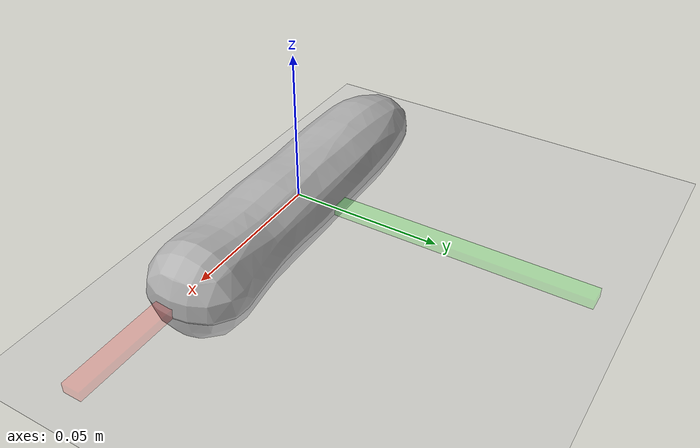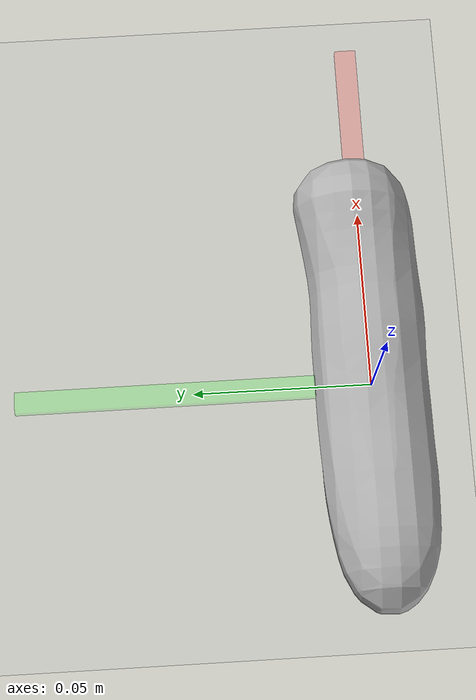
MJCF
<mujoco model="three_fingertip_cube">
    <compiler angle="radian"/>
    <size njmax="500" nconmax="100"/>
    <asset>
        <mesh name="object" file="../assets/objects/stick.stl"/>
        <texture name='surface' file="../assets/textures/oak.png"/>
        <material name="obj_material" texture="surface" specular="1" shininess="0.3" reflectance="0"/>

        <texture type="2d" name="groundplane" builtin="checker" mark="edge" rgb1="0.2 0.3 0.4"
        rgb2="0.1 0.2 0.3" markrgb="0.8 0.8 0.8" width="300" height="300"/>
        <material name="groundplane" texture="groundplane" texuniform="true" texrepeat="5 5"
        reflectance="0.0"/>
    </asset>

    <worldbody>
        <light directional="true" ambient="0.2 0.2 0.2" diffuse="0.8 0.8 0.8"  castshadow="false" pos="0 1 4" dir="0 0 -1" name="light0"/>
        <camera name="demo-cam3" pos="0.010 -0.385 0.122" xyaxes="1.000 -0.004 0.000 0.001 0.208 0.978"/>

        <!-- ============================= virtual obj ========================================= -->
        <!-- pos and quat attributes of virtual obj must be put in 'geom' -->
        <body name="goal" >
            <geom name="goal" type="mesh" mesh="object" conaffinity="0" contype="0" material="obj_material"
                pos="0.0 0.0 0.0" quat="1 0 0 0"
                rgba="1. 1 1. 0.3"/>
            <geom name="goal-decoration" type="mesh" mesh="object" conaffinity="0" contype="0"
                pos="0.0 0.0 0.0" quat="1 0 0 0"
                rgba="0.0 1 0.0 0.2"/>
            <site type="box" size="0.05 0.003 0.003" rgba="1 0 0 0.2" pos="0.05 0 0"/>
            <site type="box" size="0.003 0.05 0.003" rgba="0 1 0 0.2" pos="0 0.05 0"/>
        </body>

        <!-- ============================= real obj ========================================= -->
        <body name="obj" >
            <freejoint name="object_table"/>
            <geom name="obj" type="mesh" mesh="object" material="obj_material"
                pos="0.0 0.0 0.0" quat="1 0 0 0"
                mass="0.01"
                condim="6"
                friction="0.5" rgba="0.7 0.7 0.7 1.0"/>
            <site type="box" size="0.05 0.003 0.003" rgba="1 0 0 0.2" pos="0.05 0 0"/>
            <site type="box" size="0.003 0.05 0.003" rgba="0 1 0 0.2" pos="0 0.05 0"/>
        </body>

        <geom name="table" rgba="0.8 0.8 0.8 1.0" friction="0.5"
                size="0 0 0.05" type="plane" material="groundplane"
                condim="6"
              />

        <body name="fingertip0" pos="0.0 0.0 0.0" quat="1 0 0 0">
            <joint name="fingertip0_x" type="slide" axis="1 0 0"/>
            <joint name="fingertip0_y" type="slide" axis="0 1 0"/>
            <joint name="fingertip0_z" type="slide" axis="0 0 1"/>
            <geom name="fingertip0"
                condim="6"
                pos="0.0 0.0 0.0" quat="1 0 0 0"
                size="0.01" type="sphere" friction="0.5" rgba="0.5 0 0 1"/>
        </body>

        <body name="fingertip1" pos="0.0 0.0 0.0" quat="1 0 0 0">
            <joint name="fingertip1_x" type="slide" axis="1 0 0"/>
            <joint name="fingertip1_y" type="slide" axis="0 1 0"/>
            <joint name="fingertip1_z" type="slide" axis="0 0 1"/>
            <geom name="fingertip1"
                condim="6"
                pos="0.0 0.0 0.0" quat="1 0 0 0"
                size="0.01" type="sphere" friction="0.5" rgba="0 0.5 0 1"/>
        </body>

        <body name="fingertip2" pos="0.0 0.0 0.0" quat="1 0 0 0">
            <joint name="fingertip2_x" type="slide" axis="1 0 0"/>
            <joint name="fingertip2_y" type="slide" axis="0 1 0"/>
            <joint name="fingertip2_z" type="slide" axis="0 0 1"/>
            <geom name="fingertip2"
                condim="6"
                pos="0.0 0.0 0.0" quat="1 0 0 0"
                size="0.01" type="sphere" friction="0.5" rgba="0 0 0.5 1"/>
        </body>

    </worldbody>

    <actuator>
        <motor name="fingertip0_refx" joint="fingertip0_x" ctrlrange="-1.5 1.5" ctrllimited="false"/>
        <motor name="fingertip0_refy" joint="fingertip0_y" ctrlrange="-1.5 1.5" ctrllimited="false"/>
        <motor name="fingertip0_refz" joint="fingertip0_z" ctrlrange="-1.5 1.5" ctrllimited="false"/>
        <motor name="fingertip1_refx" joint="fingertip1_x" ctrlrange="-1.5 1.5" ctrllimited="false"/>
        <motor name="fingertip1_refy" joint="fingertip1_y" ctrlrange="-1.5 1.5" ctrllimited="false"/>
        <motor name="fingertip1_refz" joint="fingertip1_z" ctrlrange="-1.5 1.5" ctrllimited="false"/>
        <motor name="fingertip2_refx" joint="fingertip2_x" ctrlrange="-1.5 1.5" ctrllimited="false"/>
        <motor name="fingertip2_refy" joint="fingertip2_y" ctrlrange="-1.5 1.5" ctrllimited="false"/>
        <motor name="fingertip2_refz" joint="fingertip2_z" ctrlrange="-1.5 1.5" ctrllimited="false"/>
    </actuator>
</mujoco>
